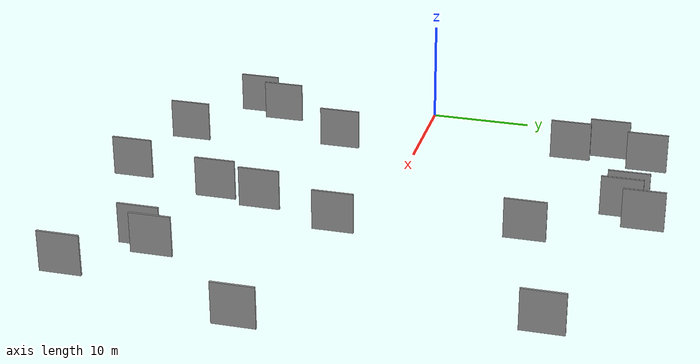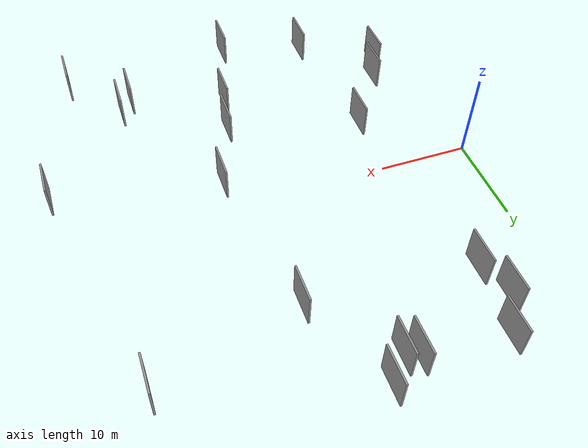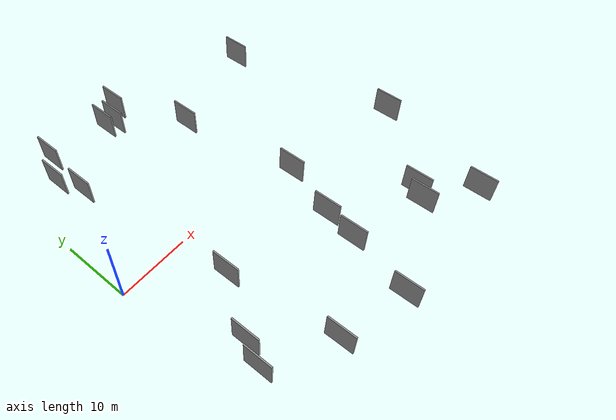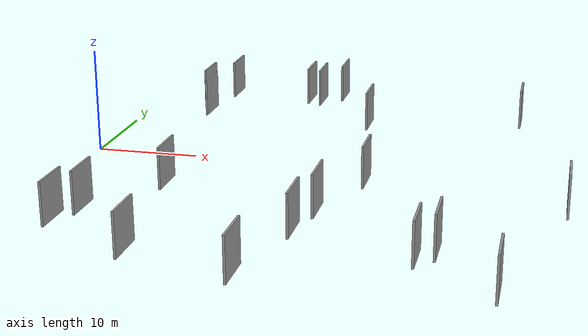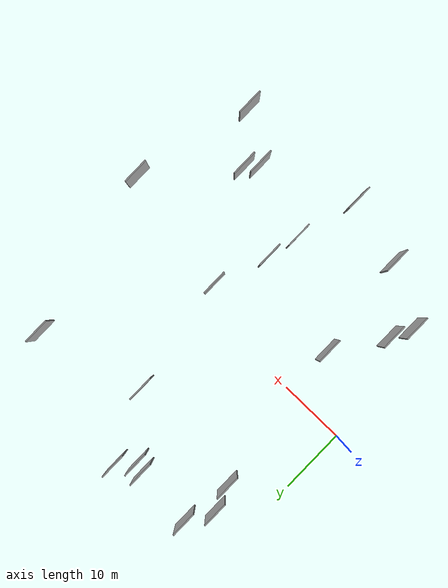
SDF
<sdf version="1.6">
 <world name="default">
  <scene>
   <sky><clouds><speed>12</speed></clouds></sky>
   <ambient>0.4 0.4 0.4 1</ambient>
   <background>0.7 0.7 0.7 1</background>
   <shadows>1</shadows>
  </scene>
  <gravity>0 0 -9.8066</gravity>
  <magnetic_field>6e-06 2.3e-05 -4.2e-05</magnetic_field>
  <physics default="0" name="default_physics" type="ode">
   <ode>
    <solver>
     <type>quick</type>
     <iters>10</iters>
     <sor>1.0</sor>
     <use_dynamic_moi_rescaling>0</use_dynamic_moi_rescaling>
    </solver>
    <constraints>
     <cfm>0</cfm>
     <erp>0.2</erp>
     <contact_max_correcting_vel>100</contact_max_correcting_vel>
     <contact_surface_layer>0.001</contact_surface_layer>
    </constraints>
   </ode>
   <max_step_size>0.004</max_step_size>
   <real_time_factor>1</real_time_factor>
   <real_time_update_rate>250</real_time_update_rate>
  </physics>
  <light name="sun" type="directional">
   <pose>0 0 10 0 0 0</pose>
   <diffuse>0.8 0.8 0.8 1</diffuse>
   <specular>0.2 0.2 0.2 1</specular>
   <attenuation>
    <range>1000</range>
    <constant>0.9</constant>
    <linear>0.01</linear>
    <quadratic>0.001</quadratic>
   </attenuation>
   <direction>-0.5 0.1 -0.9</direction>
  </light>
  <model name="grey_wall_1">
   <static>1</static>
   <pose>7.7122 23.1605 0.0 0.000000 0.000000 1.570796</pose>
   <link name="link">
    <pose>0 0 2.00 0 0 0</pose>
    <collision name="collision"><geometry><box><size>4.00 0.2 4.00</size></box></geometry></collision>
    <visual name="visual">
     <cast_shadows>0</cast_shadows>
     <geometry><box><size>4.00 0.2 4.00</size></box></geometry>
     <material>
      <script>
       <uri>model://grey_wall/materials/scripts</uri>
       <uri>model://grey_wall/materials/textures</uri>
       <name>vrc/grey_wall</name>
      </script>
     </material>
    </visual>
   </link>
  </model>
  <model name="grey_wall_2">
   <static>1</static>
   <pose>4.7419 -15.2360 0.0 0.000000 0.000000 1.570796</pose>
   <link name="link">
    <pose>0 0 2.00 0 0 0</pose>
    <collision name="collision"><geometry><box><size>4.00 0.2 4.00</size></box></geometry></collision>
    <visual name="visual">
     <cast_shadows>0</cast_shadows>
     <geometry><box><size>4.00 0.2 4.00</size></box></geometry>
     <material>
      <script>
       <uri>model://grey_wall/materials/scripts</uri>
       <uri>model://grey_wall/materials/textures</uri>
       <name>vrc/grey_wall</name>
      </script>
     </material>
    </visual>
   </link>
  </model>
  <model name="grey_wall_3">
   <static>1</static>
   <pose>18.1032 21.8950 0.0 0.000000 0.000000 1.570796</pose>
   <link name="link">
    <pose>0 0 2.00 0 0 0</pose>
    <collision name="collision"><geometry><box><size>4.00 0.2 4.00</size></box></geometry></collision>
    <visual name="visual">
     <cast_shadows>0</cast_shadows>
     <geometry><box><size>4.00 0.2 4.00</size></box></geometry>
     <material>
      <script>
       <uri>model://grey_wall/materials/scripts</uri>
       <uri>model://grey_wall/materials/textures</uri>
       <name>vrc/grey_wall</name>
      </script>
     </material>
    </visual>
   </link>
  </model>
  <model name="grey_wall_4">
   <static>1</static>
   <pose>23.8104 -16.2728 0.0 0.000000 0.000000 1.570796</pose>
   <link name="link">
    <pose>0 0 2.00 0 0 0</pose>
    <collision name="collision"><geometry><box><size>4.00 0.2 4.00</size></box></geometry></collision>
    <visual name="visual">
     <cast_shadows>0</cast_shadows>
     <geometry><box><size>4.00 0.2 4.00</size></box></geometry>
     <material>
      <script>
       <uri>model://grey_wall/materials/scripts</uri>
       <uri>model://grey_wall/materials/textures</uri>
       <name>vrc/grey_wall</name>
      </script>
     </material>
    </visual>
   </link>
  </model>
  <model name="grey_wall_5">
   <static>1</static>
   <pose>16.6806 22.3600 0.0 0.000000 0.000000 1.570796</pose>
   <link name="link">
    <pose>0 0 2.00 0 0 0</pose>
    <collision name="collision"><geometry><box><size>4.00 0.2 4.00</size></box></geometry></collision>
    <visual name="visual">
     <cast_shadows>0</cast_shadows>
     <geometry><box><size>4.00 0.2 4.00</size></box></geometry>
     <material>
      <script>
       <uri>model://grey_wall/materials/scripts</uri>
       <uri>model://grey_wall/materials/textures</uri>
       <name>vrc/grey_wall</name>
      </script>
     </material>
    </visual>
   </link>
  </model>
  <model name="grey_wall_6">
   <static>1</static>
   <pose>3.3004 -18.2624 0.0 0.000000 0.000000 1.570796</pose>
   <link name="link">
    <pose>0 0 2.00 0 0 0</pose>
    <collision name="collision"><geometry><box><size>4.00 0.2 4.00</size></box></geometry></collision>
    <visual name="visual">
     <cast_shadows>0</cast_shadows>
     <geometry><box><size>4.00 0.2 4.00</size></box></geometry>
     <material>
      <script>
       <uri>model://grey_wall/materials/scripts</uri>
       <uri>model://grey_wall/materials/textures</uri>
       <name>vrc/grey_wall</name>
      </script>
     </material>
    </visual>
   </link>
  </model>
  <model name="grey_wall_7">
   <static>1</static>
   <pose>36.0128 -18.1680 0.0 0.000000 0.000000 1.570796</pose>
   <link name="link">
    <pose>0 0 2.00 0 0 0</pose>
    <collision name="collision"><geometry><box><size>4.00 0.2 4.00</size></box></geometry></collision>
    <visual name="visual">
     <cast_shadows>0</cast_shadows>
     <geometry><box><size>4.00 0.2 4.00</size></box></geometry>
     <material>
      <script>
       <uri>model://grey_wall/materials/scripts</uri>
       <uri>model://grey_wall/materials/textures</uri>
       <name>vrc/grey_wall</name>
      </script>
     </material>
    </visual>
   </link>
  </model>
  <model name="grey_wall_8">
   <static>1</static>
   <pose>24.8156 -11.5471 0.0 0.000000 0.000000 1.570796</pose>
   <link name="link">
    <pose>0 0 2.00 0 0 0</pose>
    <collision name="collision"><geometry><box><size>4.00 0.2 4.00</size></box></geometry></collision>
    <visual name="visual">
     <cast_shadows>0</cast_shadows>
     <geometry><box><size>4.00 0.2 4.00</size></box></geometry>
     <material>
      <script>
       <uri>model://grey_wall/materials/scripts</uri>
       <uri>model://grey_wall/materials/textures</uri>
       <name>vrc/grey_wall</name>
      </script>
     </material>
    </visual>
   </link>
  </model>
  <model name="grey_wall_9">
   <static>1</static>
   <pose>40.5498 18.1151 0.0 0.000000 0.000000 1.570796</pose>
   <link name="link">
    <pose>0 0 2.00 0 0 0</pose>
    <collision name="collision"><geometry><box><size>4.00 0.2 4.00</size></box></geometry></collision>
    <visual name="visual">
     <cast_shadows>0</cast_shadows>
     <geometry><box><size>4.00 0.2 4.00</size></box></geometry>
     <material>
      <script>
       <uri>model://grey_wall/materials/scripts</uri>
       <uri>model://grey_wall/materials/textures</uri>
       <name>vrc/grey_wall</name>
      </script>
     </material>
    </visual>
   </link>
  </model>
  <model name="grey_wall_10">
   <static>1</static>
   <pose>45.9493 -7.0256 0.0 0.000000 0.000000 1.570796</pose>
   <link name="link">
    <pose>0 0 2.00 0 0 0</pose>
    <collision name="collision"><geometry><box><size>4.00 0.2 4.00</size></box></geometry></collision>
    <visual name="visual">
     <cast_shadows>0</cast_shadows>
     <geometry><box><size>4.00 0.2 4.00</size></box></geometry>
     <material>
      <script>
       <uri>model://grey_wall/materials/scripts</uri>
       <uri>model://grey_wall/materials/textures</uri>
       <name>vrc/grey_wall</name>
      </script>
     </material>
    </visual>
   </link>
  </model>
  <model name="grey_wall_11">
   <static>1</static>
   <pose>24.8481 13.9159 0.0 0.000000 0.000000 1.570796</pose>
   <link name="link">
    <pose>0 0 2.00 0 0 0</pose>
    <collision name="collision"><geometry><box><size>4.00 0.2 4.00</size></box></geometry></collision>
    <visual name="visual">
     <cast_shadows>0</cast_shadows>
     <geometry><box><size>4.00 0.2 4.00</size></box></geometry>
     <material>
      <script>
       <uri>model://grey_wall/materials/scripts</uri>
       <uri>model://grey_wall/materials/textures</uri>
       <name>vrc/grey_wall</name>
      </script>
     </material>
    </visual>
   </link>
  </model>
  <model name="grey_wall_12">
   <static>1</static>
   <pose>20.1964 24.1727 0.0 0.000000 0.000000 1.570796</pose>
   <link name="link">
    <pose>0 0 2.00 0 0 0</pose>
    <collision name="collision"><geometry><box><size>4.00 0.2 4.00</size></box></geometry></collision>
    <visual name="visual">
     <cast_shadows>0</cast_shadows>
     <geometry><box><size>4.00 0.2 4.00</size></box></geometry>
     <material>
      <script>
       <uri>model://grey_wall/materials/scripts</uri>
       <uri>model://grey_wall/materials/textures</uri>
       <name>vrc/grey_wall</name>
      </script>
     </material>
    </visual>
   </link>
  </model>
  <model name="grey_wall_13">
   <static>1</static>
   <pose>21.3905 -25.6357 0.0 0.000000 0.000000 1.570796</pose>
   <link name="link">
    <pose>0 0 2.00 0 0 0</pose>
    <collision name="collision"><geometry><box><size>4.00 0.2 4.00</size></box></geometry></collision>
    <visual name="visual">
     <cast_shadows>0</cast_shadows>
     <geometry><box><size>4.00 0.2 4.00</size></box></geometry>
     <material>
      <script>
       <uri>model://grey_wall/materials/scripts</uri>
       <uri>model://grey_wall/materials/textures</uri>
       <name>vrc/grey_wall</name>
      </script>
     </material>
    </visual>
   </link>
  </model>
  <model name="grey_wall_14">
   <static>1</static>
   <pose>9.7748 -7.7643 0.0 0.000000 0.000000 1.570796</pose>
   <link name="link">
    <pose>0 0 2.00 0 0 0</pose>
    <collision name="collision"><geometry><box><size>4.00 0.2 4.00</size></box></geometry></collision>
    <visual name="visual">
     <cast_shadows>0</cast_shadows>
     <geometry><box><size>4.00 0.2 4.00</size></box></geometry>
     <material>
      <script>
       <uri>model://grey_wall/materials/scripts</uri>
       <uri>model://grey_wall/materials/textures</uri>
       <name>vrc/grey_wall</name>
      </script>
     </material>
    </visual>
   </link>
  </model>
  <model name="grey_wall_15">
   <static>1</static>
   <pose>5.5307 19.2282 0.0 0.000000 0.000000 1.570796</pose>
   <link name="link">
    <pose>0 0 2.00 0 0 0</pose>
    <collision name="collision"><geometry><box><size>4.00 0.2 4.00</size></box></geometry></collision>
    <visual name="visual">
     <cast_shadows>0</cast_shadows>
     <geometry><box><size>4.00 0.2 4.00</size></box></geometry>
     <material>
      <script>
       <uri>model://grey_wall/materials/scripts</uri>
       <uri>model://grey_wall/materials/textures</uri>
       <name>vrc/grey_wall</name>
      </script>
     </material>
    </visual>
   </link>
  </model>
  <model name="grey_wall_16">
   <static>1</static>
   <pose>41.2693 -24.7019 0.0 0.000000 0.000000 1.570796</pose>
   <link name="link">
    <pose>0 0 2.00 0 0 0</pose>
    <collision name="collision"><geometry><box><size>4.00 0.2 4.00</size></box></geometry></collision>
    <visual name="visual">
     <cast_shadows>0</cast_shadows>
     <geometry><box><size>4.00 0.2 4.00</size></box></geometry>
     <material>
      <script>
       <uri>model://grey_wall/materials/scripts</uri>
       <uri>model://grey_wall/materials/textures</uri>
       <name>vrc/grey_wall</name>
      </script>
     </material>
    </visual>
   </link>
  </model>
  <model name="grey_wall_17">
   <static>1</static>
   <pose>11.7072 -23.1073 0.0 0.000000 0.000000 1.570796</pose>
   <link name="link">
    <pose>0 0 2.00 0 0 0</pose>
    <collision name="collision"><geometry><box><size>4.00 0.2 4.00</size></box></geometry></collision>
    <visual name="visual">
     <cast_shadows>0</cast_shadows>
     <geometry><box><size>4.00 0.2 4.00</size></box></geometry>
     <material>
      <script>
       <uri>model://grey_wall/materials/scripts</uri>
       <uri>model://grey_wall/materials/textures</uri>
       <name>vrc/grey_wall</name>
      </script>
     </material>
    </visual>
   </link>
  </model>
  <model name="grey_wall_18">
   <static>1</static>
   <pose>27.6421 -3.5285 0.0 0.000000 0.000000 1.570796</pose>
   <link name="link">
    <pose>0 0 2.00 0 0 0</pose>
    <collision name="collision"><geometry><box><size>4.00 0.2 4.00</size></box></geometry></collision>
    <visual name="visual">
     <cast_shadows>0</cast_shadows>
     <geometry><box><size>4.00 0.2 4.00</size></box></geometry>
     <material>
      <script>
       <uri>model://grey_wall/materials/scripts</uri>
       <uri>model://grey_wall/materials/textures</uri>
       <name>vrc/grey_wall</name>
      </script>
     </material>
    </visual>
   </link>
  </model>
  <model name="grey_wall_19">
   <static>1</static>
   <pose>6.8189 15.4405 0.0 0.000000 0.000000 1.570796</pose>
   <link name="link">
    <pose>0 0 2.00 0 0 0</pose>
    <collision name="collision"><geometry><box><size>4.00 0.2 4.00</size></box></geometry></collision>
    <visual name="visual">
     <cast_shadows>0</cast_shadows>
     <geometry><box><size>4.00 0.2 4.00</size></box></geometry>
     <material>
      <script>
       <uri>model://grey_wall/materials/scripts</uri>
       <uri>model://grey_wall/materials/textures</uri>
       <name>vrc/grey_wall</name>
      </script>
     </material>
    </visual>
   </link>
  </model>
  <model name="grey_wall_20">
   <static>1</static>
   <pose>34.5589 -19.8673 0.0 0.000000 0.000000 1.570796</pose>
   <link name="link">
    <pose>0 0 2.00 0 0 0</pose>
    <collision name="collision"><geometry><box><size>4.00 0.2 4.00</size></box></geometry></collision>
    <visual name="visual">
     <cast_shadows>0</cast_shadows>
     <geometry><box><size>4.00 0.2 4.00</size></box></geometry>
     <material>
      <script>
       <uri>model://grey_wall/materials/scripts</uri>
       <uri>model://grey_wall/materials/textures</uri>
       <name>vrc/grey_wall</name>
      </script>
     </material>
    </visual>
   </link>
  </model>
 </world>
</sdf>
